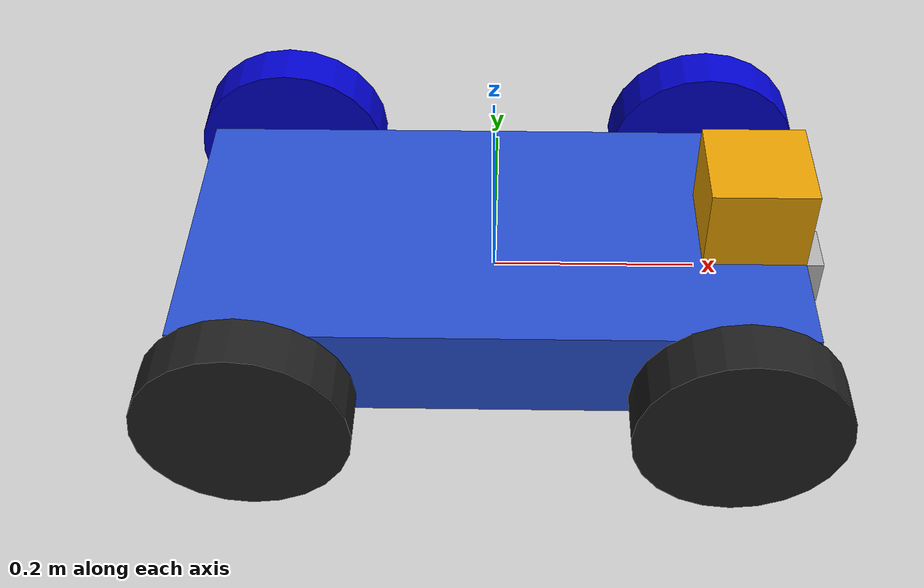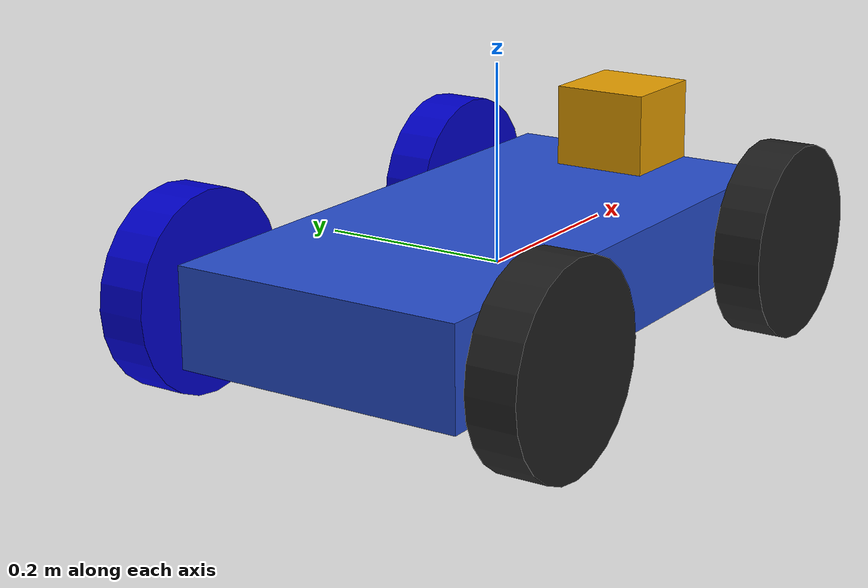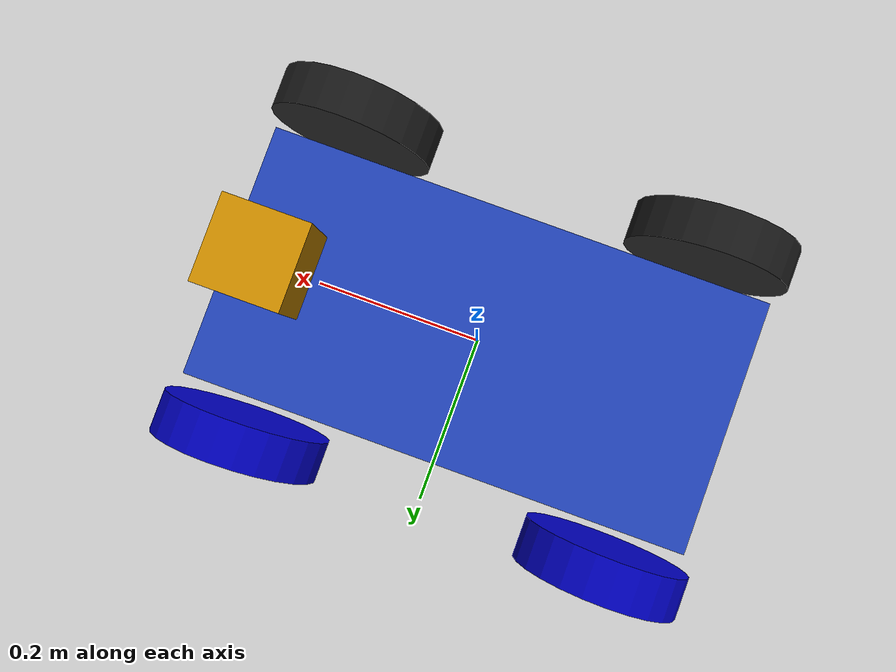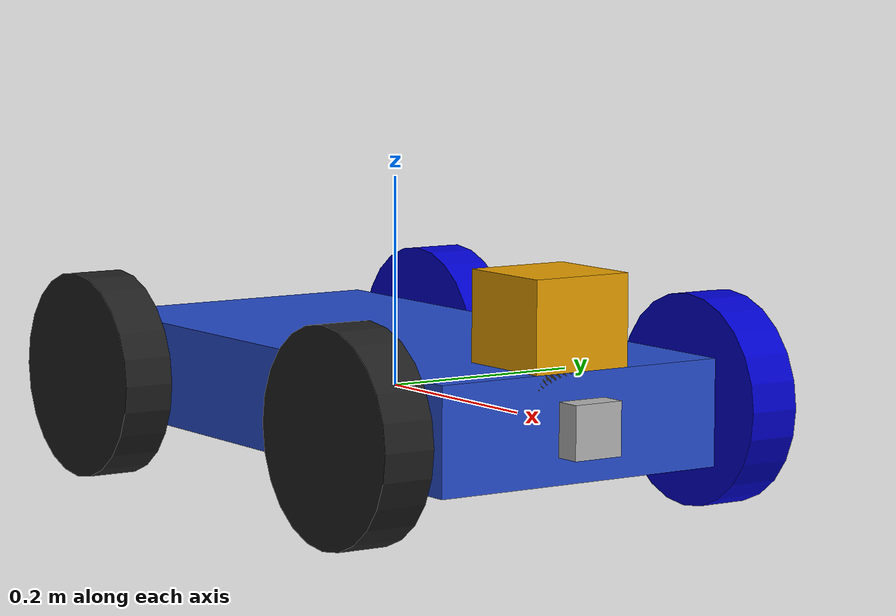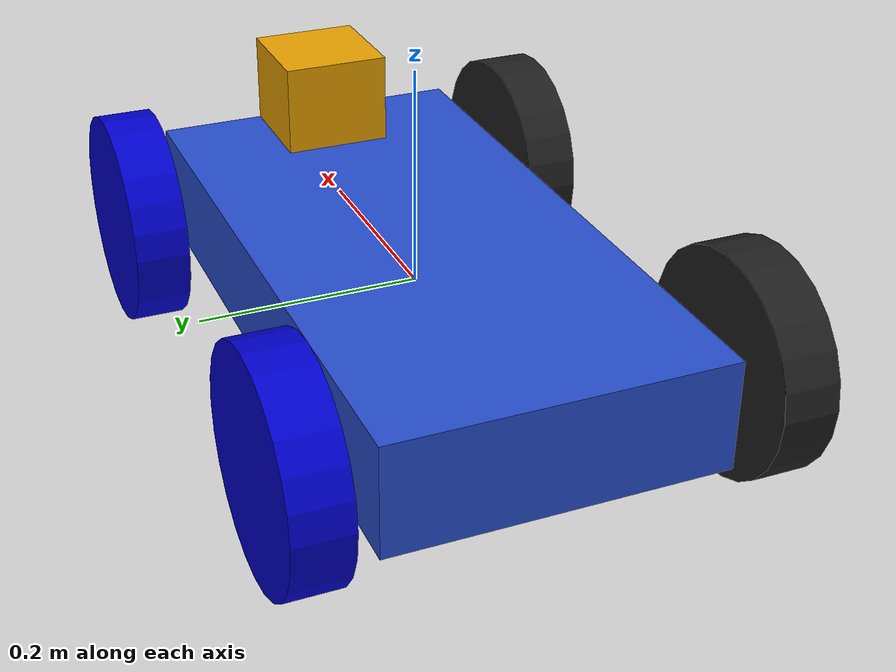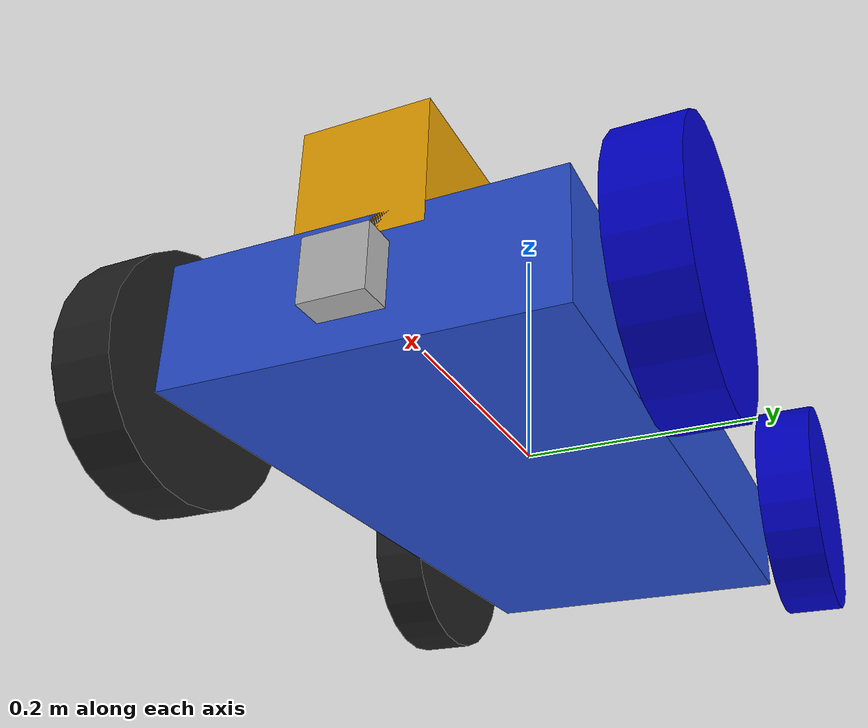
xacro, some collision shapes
<?xml version='1.0'?>

<robot name="q802_skid_steer_bot" xmlns:xacro="http://www.ros.org/wiki/xacro">
  <!-- color references: however gazebo has trouble urdf to sdf
    and evidently rviz has trouble sdf to urdf -->
  <material name="blue">
    <color rgba="0 0 0.8 1"/>
  </material>
  <material name="black">
    <color rgba="0 0 0 1"/>
  </material>
  <material name="white">
    <color rgba="1 1 1 1"/>
  </material>
  <!-- so we do this... -->
  <gazebo reference="front_left_wheel">
    <material>Gazebo/Black</material>
  </gazebo>
  <gazebo reference="front_right_wheel">
    <material>Gazebo/Black</material>
  </gazebo>
  <gazebo reference="rear_left_wheel">
    <material>Gazebo/Black</material>
  </gazebo>
  <gazebo reference="rear_right_wheel">
    <material>Gazebo/Black</material>
  </gazebo>
  <gazebo reference="chassis">
    <material>Gazebo/Blue</material>
  </gazebo>
  <gazebo reference="camera">
    <material>Gazebo/Red</material>
  </gazebo>

  <!-- gazebo plugins for the skid steer controller, wheels, camera and hokuyo sensors -->
  <xacro:include filename="$(find home_service_robot)/urdf/q802_skid_steer_bot.gazebo" />

  <link name="robot_footprint"></link>

  <joint name="robot_footprint_joint" type="fixed">
    <origin xyz="0 0 0" rpy="0 0 0" />
    <parent link="robot_footprint"/>
    <child link="chassis" />
  </joint>

  <link name="chassis">
    <pose>0 0 0.1 0 0 0</pose>

    <inertial>
      <mass value="15.0"/>
      <origin xyz="0.0 0 0" rpy=" 0 0 0"/>
      <inertia
          ixx="0.1" ixy="0" ixz="0"
          iyy="0.1" iyz="0"
          izz="0.1"
      />
    </inertial>

    <collision name="collision">
      <origin xyz="0 0 0" rpy=" 0 0 0"/>
      <geometry>
        <box size=".6 .3 .1"/>
      </geometry>
    </collision>

    <visual name="chassis_visual">
      <origin xyz="0 0 0" rpy=" 0 0 0"/>
      <geometry>
        <box size=".6 .3 .1"/>
      </geometry>
    </visual>
  </link>

  <!-- front wheels -->
  <link name='left_front_wheel'>
    <inertial>
      <mass value="5.0"/>
      <origin xyz="0 0 0" rpy="0 1.5707 1.5707"/>
      <inertia
          ixx="0.1" ixy="0" ixz="0"
          iyy="0.1" iyz="0"
          izz="0.1"
      />
    </inertial>
    <collision name='left_front_wheel_collision'>
      <origin xyz="0 0 0" rpy="1.5707 0 0"/>
      <geometry>
        <cylinder radius="0.1" length="0.05"/>
      </geometry>
    </collision>
    <visual name='left_front_wheel_visual'>
      <origin xyz="0 0 0" rpy="1.5707 0 0"/>
      <geometry>
        <cylinder radius="0.1" length="0.05"/>
      </geometry>
      <material name="blue">
        <color rgba="0 0 0.8 1"/>
      </material>
    </visual>
  </link>

  <link name='right_front_wheel'>
    <inertial>
      <mass value="5.0"/>
      <origin xyz="0 0 0" rpy="0 1.5707 1.5707"/>
      <inertia
          ixx="0.1" ixy="0" ixz="0"
          iyy="0.1" iyz="0"
          izz="0.1"
      />
    </inertial>
    <collision name='right_front_wheel_collision'>
      <origin xyz="0 0 0" rpy="1.5707 0 0"/>
      <geometry>
        <cylinder radius="0.1" length="0.05"/>
      </geometry>
    </collision>
    <visual name='right_front_wheel_visual'>
      <origin xyz="0 0 0" rpy="1.5707 0 0"/>
      <geometry>
        <cylinder radius="0.1" length="0.05"/>
      </geometry>
    </visual>
  </link>

  <!-- front wheel joints -->
  <joint type="continuous" name="left_front_wheel_hinge">
    <origin xyz="0.225 0.2 0" rpy="0 0 0"/>
    <child link="left_front_wheel"/>
    <parent link="chassis"/>
    <axis xyz="0 1 0" rpy="0 0 0"/>
    <limit effort="10000" velocity="1000"/>
    <dynamics damping="1.0" friction="1.0"/>
  </joint>
  <joint type="continuous" name="right_front_wheel_hinge">
    <origin xyz="0.225 -0.2 0" rpy="0 0 0"/>
    <child link="right_front_wheel"/>
    <parent link="chassis"/>
    <axis xyz="0 1 0" rpy="0 0 0"/>
    <limit effort="10000" velocity="1000"/>
    <dynamics damping="1.0" friction="1.0"/>
  </joint>

  <!-- rear wheels -->
  <link name='left_back_wheel'>
    <inertial>
      <mass value="5.0"/>
      <origin xyz="0 0 0" rpy="0 1.5707 1.5707"/>
      <inertia
          ixx="0.1" ixy="0" ixz="0"
          iyy="0.1" iyz="0"
          izz="0.1"
      />
    </inertial>
    <collision name='left_back_wheel_collision'>
      <origin xyz="0 0 0" rpy="1.5707 0 0"/>
      <geometry>
        <cylinder radius="0.1" length="0.05"/>
      </geometry>
    </collision>
    <visual name='left_back_wheel_visual'>
      <origin xyz="0 0 0" rpy="1.5707 0 0"/>
      <geometry>
        <cylinder radius="0.1" length="0.05"/>
      </geometry>
      <material name="blue">
        <color rgba="0 0 0.8 1"/>
      </material>
    </visual>
  </link>

  <link name='right_back_wheel'>
    <inertial>
      <mass value="5.0"/>
      <origin xyz="0 0 0" rpy="0 1.5707 1.5707"/>
      <inertia
          ixx="0.1" ixy="0" ixz="0"
          iyy="0.1" iyz="0"
          izz="0.1"
      />
    </inertial>
    <collision name='right_back_wheel_collision'>
      <origin xyz="0 0 0" rpy="1.5707 0 0"/>
      <geometry>
        <cylinder radius="0.1" length="0.05"/>
      </geometry>
    </collision>
    <visual name='right_back_wheel_visual'>
      <origin xyz="0 0 0" rpy="1.5707 0 0"/>
      <geometry>
        <cylinder radius="0.1" length="0.05"/>
      </geometry>
    </visual>
  </link>
  <!-- rear wheel joints -->
  <joint type="continuous" name="left_back_wheel_hinge">
    <origin xyz="-0.225 0.2 0" rpy="0 0 0"/>
    <child link="left_back_wheel"/>
    <parent link="chassis"/>
    <axis xyz="0 1 0" rpy="0 0 0"/>
    <limit effort="10000" velocity="1000"/>
    <dynamics damping="1.0" friction="1.0"/>
  </joint>
  <joint type="continuous" name="right_back_wheel_hinge">
    <origin xyz="-0.225 -0.2 0" rpy="0 0 0"/>
    <child link="right_back_wheel"/>
    <parent link="chassis"/>
    <axis xyz="0 1 0" rpy="0 0 0"/>
    <limit effort="10000" velocity="1000"/>
    <dynamics damping="1.0" friction="1.0"/>
  </joint>

  <!-- SENSORS -->

  <!-- RGB-D (Kinect) Camera sensor linked to camera_link -->
  <joint name="camera_optical_joint" type="fixed">
    <origin xyz="0 0 0" rpy="-1.5707 0 -1.5707"/>
    <parent link="camera_link"/>
    <child link="camera_link_optical"/>
  </joint>
  <link name="camera_link_optical">
  </link>

  <!-- Orig Camera sensor -->
  <link name="camera_link">
  <box_inertia m="0.1" x="0.05" y="0.05" d="0.05"/>
    <inertial>
      <mass value="0.1"/>
      <origin xyz="0.0 0 0" rpy="0 0 0"/>
      <inertia
          ixx="0.000001" ixy="0" ixz="0"
          iyy="0.000001" iyz="0"
          izz="0.000001"
      />
    </inertial>
    <collision name="camera_collision">
      <origin xyz="0 0 0" rpy=" 0 0 0"/>
      <geometry>
        <box size="0.05 0.05 0.05"/>
      </geometry>
    </collision>

    <visual name="camera_visual">
      <origin xyz="0 0 0" rpy=" 0 0 0"/>
      <geometry>
        <box size="0.05 0.05 0.05"/>
      </geometry>
    </visual>
  </link>
  <joint type="fixed" name="camera_joint">
    <origin xyz="0.3 0 0" rpy="0 0 0"/>
    <child link="camera_link"/>
    <parent link="chassis"/>
    <axis xyz="0 1 0" rpy="0 0 0"/>
  </joint>

  <!-- Hokuyo lidar sensor -->
  <link name="hokuyo">
    <inertial>
      <mass value="0.00001"/>
      <origin xyz="0.0 0 0" rpy="0 0 0"/>
      <inertia
          ixx="0.000001" ixy="0" ixz="0"
          iyy="0.000001" iyz="0"
          izz="0.000001"
      />
    </inertial>
    <collision name="hokuyo_collision">
      <origin xyz="0 0 -0.015" rpy=" 0 0 0"/>
      <geometry>
        <box size="0.1 0.1 0.1"/>
      </geometry>
    </collision>
    <visual name="hokuyo_visual">
      <origin xyz="0 0 0" rpy=" 0 0 0"/>
      <geometry>
        <mesh filename="package://home_service_robot/meshes/hokuyo.dae"/>
      </geometry>
    </visual>
  </link>
  <joint type="fixed" name="hokuyo_joint">
    <origin xyz="0.25 0 0.1" rpy="0 0 0"/>
    <child link="hokuyo"/>
    <parent link="chassis"/>
    <axis xyz="0 1 0" rpy="0 0 0"/>
  </joint>
</robot>
